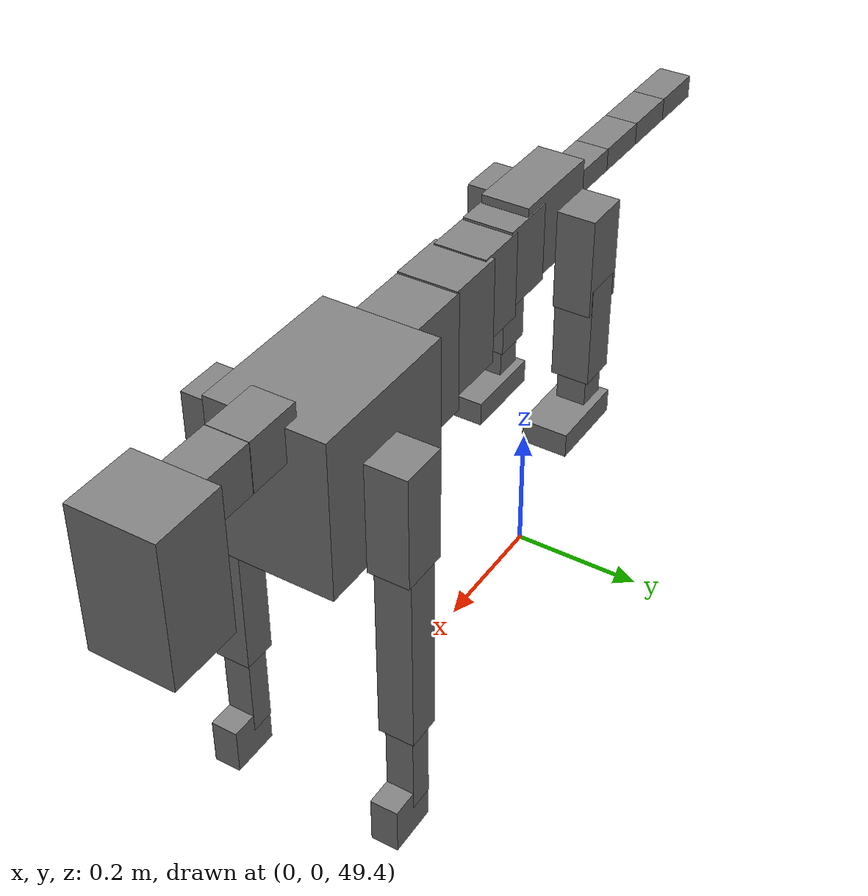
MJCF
<mujoco model="dog">

    <default>
        <joint armature="0.02" stiffness="1" damping="0.2" limited="true"/>
        <geom condim="3" friction="1 0.05 0.05" margin="0.01"/>
        <motor ctrllimited="true" ctrlrange="-1.0 1.0" forcelimited="true" gear="50"/>
    </default>

    <compiler inertiafromgeom="true" angle="radian"/>

    <option timestep="0.016" iterations="50" tolerance="1e-10" solver="Newton" jacobian="dense" cone="pyramidal"/>

    <size nconmax="20000" njmax="60000" nstack="5000000"/>
    <visual>
        <map force="0.1" zfar="30"/>
        <rgba haze="0.15 0.25 0.35 1"/>
        <quality shadowsize="2048"/>
        <global offwidth="800" offheight="800"/>
    </visual>

    <asset>
        <texture type="skybox" builtin="gradient" rgb1="0.3 0.5 0.7" rgb2="0 0 0" width="512" height="512"/>
        <texture name="texplane" type="2d" builtin="checker" rgb1=".2 .3 .4" rgb2=".1 0.15 0.2" width="512" height="512"
                 mark="cross" markrgb=".8 .8 .8"/>
        <texture name="texgeom" type="cube" builtin="flat" mark="cross" width="127" height="1278" rgb1="0.8 0.6 0.4"
                 rgb2="0.8 0.6 0.4" markrgb="1 1 1" random="0.01"/>

        <material name="matplane" reflectance="0.3" texture="texplane" texrepeat="1 1" texuniform="true"/>
        <material name="matgeom" texture="texgeom" texuniform="true" rgba="0.8 0.6 .4 1"/>
    </asset>

    <worldbody>
        <geom name="floor" pos="0 0 0" size="0 0 .25" type="plane" material="matplane" condim="3"/>

        <light directional="false" diffuse=".2 .2 .2" specular="0 0 0" pos="0 0 5" dir="0 0 -1" castshadow="false"/>
        <light mode="targetbodycom" target="torso" directional="false" diffuse=".8 .8 .8" specular="0.3 0.3 0.3"
               pos="0 0 4.0" dir="0 0 -1"/>

        <body name="root" pos="0 0 50">
            <freejoint name="root_1"/>
            <geom type="box" pos="0 0 -0.02" size="0.0774  0.0358  0.063" density="2030"/>

            <body name="spine1" pos="0.054 0 0">
                <joint name="spine1_y" axis="0 1 0" range="0 0.7" limited="true"/>
                <geom type="box" pos="0.02375 0 -0.03" size="0.04375  0.0375  0.05985" density="2030"/>

                <body name="spine2" pos="0.0612 0 0">
                    <joint name="spine2_y" axis="0 1 0" range="-0.15 0.15" limited="true"/>
                    <geom type="box" pos="0.03555  0  -0.04" size="0.04055  0.039  0.06615" density="2030"/>

                    <body name="spine3" pos="0.0730 0 0">
                        <joint name="spine3_y" axis="0 1 0" range="-0.15 0.15" limited="true"/>
                        <geom type="box" pos="0.03555  0  -0.057" size="0.04555  0.0445  0.081" density="2030"/>

                        <body name="spine4" pos="0.0780 0 0">
                            <joint name="spine4_y" axis="0 1 0" range="-0.15 0.15" limited="true"/>
                            <geom type="box" pos="0.05265  0  -0.07" size="0.05265  0.045  0.09135" density="2030"/>

                            <body name="torso" pos="0.1082 0 0">
                                <joint name="torso_y" axis="0 1 0" range="-0.15 0.15" limited="true"/>
                                <geom type="box" pos="0.11925  0  -0.085" size="0.11925  0.085  0.11745"
                                      density="2030"/>

                                <body name="neck1" pos="0.2160  0   0.0180">
                                    <joint name="neck1_y" axis="0 1 0" range="-1.2  -1" limited="true"/>
                                    <geom type="box" pos="0.0423  0  0" size="0.0423  0.03  0.036" density="2325"/>

                                    <body name="neck2" pos="0.0853  0  0">
                                        <joint name="neck2_y" axis="0 1 0" range="0.1  0" limited="true"/>
                                        <geom type="box" pos="0.0423  0  0" size="0.0423  0.03  0.036" density="2325"/>

                                        <body name="head" pos="0.0853  0  0">
                                            <joint name="head_y" axis="0 1 0" range="-0.3  -0.2" limited="true"/>
                                            <geom type="box" pos="0.0531  0  -0.055" size="0.0531  0.06  0.1044"
                                                  density="4030"/>

                                        </body>
                                    </body>
                                </body>

                                <body name="front_shoulder" pos="0.156  0   -0.0480">
                                    <joint name="front_shoulder_y" axis="0 1 0" range="-1 1.5" limited="true"/>
                                    <geom type="box" pos="0 0.13 -0.0555" size="0.0348  0.0297  0.0822" density="1158"/>
                                    <geom type="box" pos="0 -0.13 -0.0555" size="0.0348  0.0297  0.0822"
                                          density="1158"/>

                                    <body name="front_elbow" pos="0  0  -0.1111">
                                        <joint name="front_elbow_y" axis="0 1 0" range="-2 0" limited="true"/>
                                        <geom type="box" pos="0 0.13 -0.1529" size="0.0257  0.0263  0.1529"
                                              density="1081"/>
                                        <geom type="box" pos="0 -0.13 -0.1529" size="0.0257  0.0263  0.1529"
                                              density="1081"/>

                                        <body name="front_wrist" pos="0  0  -0.3058">
                                            <joint name="front_wrist_y" axis="0 1 0" range="-0.2 0" limited="true"/>
                                            <geom type="box" pos="0 0.13 -0.0588" size="0.0185  0.0206  0.0719"
                                                  density="1664"/>
                                            <geom type="box" pos="0 -0.13 -0.0588" size="0.0185  0.0206  0.0719"
                                                  density="1664"/>

                                            <body name="front_finger_end" pos="0  0  -0.1175">
                                                <joint name="front_finger_y" axis="0 1 0" range="-0.4 1"
                                                       limited="true"/>
                                                <geom type="box" pos="0.0205  0.13  -0.0215"
                                                      size="0.0376  0.0205  0.0365" density="1515"/>
                                                <geom type="box" pos="0.0205  -0.13  -0.0215"
                                                      size="0.0376  0.0205  0.0365" density="1515"/>

                                            </body>

                                        </body>
                                    </body>
                                </body>

                            </body>
                        </body>
                    </body>
                </body>
            </body>

            <body name="back_hip" pos="-0.03 0 -0.018">
                <joint name="back_hip_y" axis="0 1 0" range="-1.5 0.3" limited="true"/>
                <geom type="box" pos="0 0.07 -0.0532" size="0.0364  0.0286  0.0760" density="1154"/>
                <geom type="box" pos="0 -0.07 -0.0532" size="0.0364  0.0286  0.0760" density="1154"/>

                <body name="back_knee" pos="0  0  -0.1064">
                    <joint name="back_knee_y" axis="0 1 0" range="0 2.8" limited="true"/>
                    <geom type="box" pos="0 0.07 -0.0628" size="0.0295  0.0291  0.0783" density="1227"/>
                    <geom type="box" pos="0 -0.07 -0.0628" size="0.0295  0.0291  0.0783" density="1227"/>

                    <body name="back_ankle" pos="0  0  -0.1255">
                        <joint name="back_ankle_y" axis="0 1 0" range="-2.2 0" limited="true"/>
                        <geom type="box" pos="0 0.07 -0.0373" size="0.0224  0.0224  0.0486" density="1284"/>
                        <geom type="box" pos="0 -0.07 -0.0373" size="0.0224  0.0224  0.0486" density="1284"/>

                        <body name="back_toe_end" pos="0  0  -0.0746">
                            <joint name="back_toe_y" axis="0 1 0" range="-0.4 1" limited="true"/>
                            <geom type="box" pos="0.0352  0.07  -0.0037" size="0.0646  0.0352  0.0187" density="1515"/>
                            <geom type="box" pos="0.0352  -0.07  -0.0037" size="0.0646  0.0352  0.0187" density="1515"/>

                        </body>
                    </body>
                </body>
            </body>

            <body name="tail1" pos="-0.074 0 -0.006">
                <joint name="tail1_y" axis="0 1 0" range="-0.2 0.2" limited="true"/>
                <geom type="box" pos="-0.0536  0  0" size="0.045  0.025  0.0175" density="1587"/>

                <body name="tail2" pos="-0.09 0 0">
                    <joint name="tail2_y" axis="0 1 0" range="-0.2 0.2" limited="true"/>
                    <geom type="box" pos="-0.0536  0  0" size="0.045  0.025  0.0175" density="1587"/>

                    <body name="tail3" pos="-0.09 0 0">
                        <joint name="tail3_y" axis="0 1 0" range="-0.2 0.2" limited="true"/>
                        <geom type="box" pos="-0.0536  0  0" size="0.045  0.025  0.0175" density="1587"/>

                        <body name="tail4" pos="-0.09 0 0">
                            <joint name="tail4_y" axis="0 1 0" range="-0.2 0.2" limited="true"/>
                            <geom type="box" pos="-0.0536  0  0" size="0.045  0.025  0.0175" density="1587"/>

                        </body>
                    </body>
                </body>
            </body>
        </body>
    </worldbody>

    <actuator>
        <motor joint="spine1_y" forcerange="-150 150     "/>
        <motor joint="spine2_y" forcerange="-150 150     "/>
        <motor joint="spine3_y" forcerange="-150 150     "/>
        <motor joint="spine4_y" forcerange="-150 150     "/>
        <motor joint="torso_y" forcerange="-150 150     "/>
        <motor joint="neck1_y" forcerange="-100 100       "/>
        <motor joint="neck2_y" forcerange="-100 100       "/>
        <motor joint="head_y" forcerange="-150 150       "/>
        <motor joint="front_shoulder_y" forcerange="-152.92 145.33"/>
        <motor joint="front_elbow_y" forcerange="-117.99 173.21"/>
        <motor joint="front_wrist_y" forcerange="-65.57 98.86"/>
        <motor joint="front_finger_y" forcerange="-23.69 45.74"/>
        <motor joint="back_hip_y" forcerange="-284.00 296.68"/>
        <motor joint="back_knee_y" forcerange="-306.87 316.67"/>
        <motor joint="back_angle_y" forcerange="-134.21 123.97"/>
        <motor joint="back_toe_y" forcerange="-100.08 101.90"/>
        <motor joint="tail1_y" forcerange="-50 50     "/>
        <motor joint="tail2_y" forcerange="-50 50     "/>
        <motor joint="tail3_y" forcerange="-50 50     "/>
        <motor joint="tail4_y" forcerange="-50 50     "/>
    </actuator>
</mujoco>
